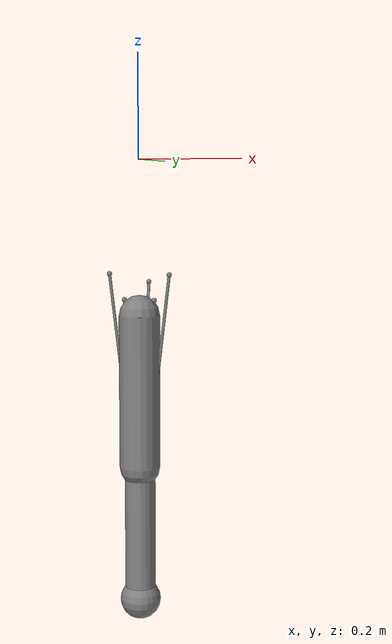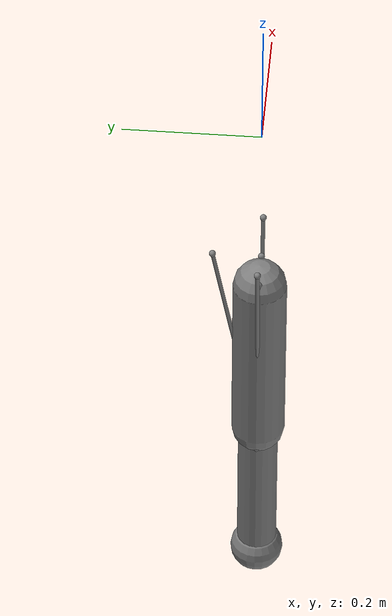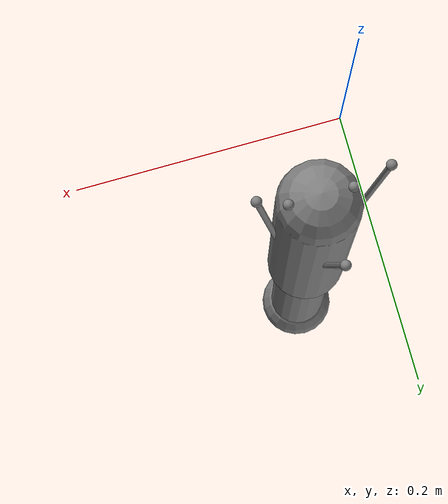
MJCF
<mujoco model="arm_9muscles">
  <compiler angle="radian" autolimits="true"/>
  <option timestep="0.002" iterations="50" solver="Newton"
          integrator="implicit" cone="elliptic"/>

  <default>
    <muscle ctrllimited="true" ctrlrange="0 1"
            force="-1" scale="200" lmin="0.5" lmax="1.6"
            vmax="10" fpmax="1.5" fvmax="1.4"/>
  </default>

  <worldbody>
    <!-- Thorax anchor sites: shoulder muscles need a ground reaction -->
    <site name="bic_l_origin"  pos="0.03  0.00 -0.27"/>
    <site name="tri_l_origin"  pos="-0.03 0.00 -0.27"/>
    <site name="delt_a_anchor" pos="0.06  0.00 -0.22"/>
    <site name="delt_m_anchor" pos="0.00  0.07 -0.24"/>
    <site name="delt_p_anchor" pos="-0.06 0.00 -0.22"/>

    <body name="humerus" pos="0 0 -0.3">
      <joint name="shoulder_flex" type="hinge" axis="0 -1 0" range="-0.5 2.5" damping="0.1"/>
      <joint name="shoulder_abd"  type="hinge" axis="1 0 0"  range="-0.5 2.5" damping="0.1"/>
      <joint name="shoulder_rot"  type="hinge" axis="0 0 1"  range="-0.05 0.05" damping="20" stiffness="200"/>
      <geom type="capsule" fromto="0 0 0 0 0 -0.3" size="0.04" mass="1.98"/>

      <!-- Single-joint muscle origins on the humerus shaft -->
      <site name="bic_s_origin"  pos="0.02   0.00 -0.10"/>
      <site name="bra_origin"    pos="0.015  0.00 -0.15"/>
      <site name="tri_la_origin" pos="-0.02  0.00 -0.08"/>
      <site name="tri_m_origin"  pos="-0.015 0.00 -0.12"/>

      <!-- Via points just above the elbow: keep flexor/extensor paths off the
           joint axis so the moment arm stays physiological at full extension -->
      <site name="bic_l_via"  pos="0.025  0.00 -0.28"/>
      <site name="bic_s_via"  pos="0.025  0.00 -0.28"/>
      <site name="bra_via"    pos="0.02   0.00 -0.28"/>
      <site name="tri_l_via"  pos="-0.025 0.00 -0.28"/>
      <site name="tri_la_via" pos="-0.025 0.00 -0.28"/>
      <site name="tri_m_via"  pos="-0.02  0.00 -0.28"/>

      <!-- Deltoid insertions at the deltoid tuberosity (~mid-humerus) -->
      <site name="delt_a_insertion" pos="0.035  0.00  -0.13"/>
      <site name="delt_m_insertion" pos="0.00   0.035 -0.13"/>
      <site name="delt_p_insertion" pos="-0.035 0.00  -0.13"/>

      <body name="radius" pos="0 0 -0.3">
        <joint name="elbow_flex" type="hinge" axis="0 -1 0" range="0 2.7" damping="0.1"/>
        <geom type="capsule" fromto="0 0 0 0 0 -0.27" size="0.03" mass="1.18"/>

        <!-- Flexor insertions on the anterior forearm, extensors on the
             olecranon side -->
        <site name="bic_l_insertion"  pos="0.02   0.00 -0.05"/>
        <site name="bic_s_insertion"  pos="0.02   0.00 -0.04"/>
        <site name="bra_insertion"    pos="0.015  0.00 -0.05"/>
        <site name="tri_l_insertion"  pos="-0.03  0.00 -0.02"/>
        <site name="tri_la_insertion" pos="-0.025 0.00 -0.015"/>
        <site name="tri_m_insertion"  pos="-0.02  0.00 -0.015"/>

        <body name="hand" pos="0 0 -0.27">
          <geom type="sphere" size="0.04" mass="0.45"/>
          <site name="end_effector" pos="0 0 0"/>
        </body>
      </body>
    </body>
  </worldbody>

  <tendon>
    <spatial name="biceps_long"  width="0.003">
      <site site="bic_l_origin"/>
      <site site="bic_l_via"/>
      <site site="bic_l_insertion"/>
    </spatial>
    <spatial name="biceps_short" width="0.003">
      <site site="bic_s_origin"/>
      <site site="bic_s_via"/>
      <site site="bic_s_insertion"/>
    </spatial>
    <spatial name="brachialis"   width="0.003">
      <site site="bra_origin"/>
      <site site="bra_via"/>
      <site site="bra_insertion"/>
    </spatial>
    <spatial name="triceps_long" width="0.003">
      <site site="tri_l_origin"/>
      <site site="tri_l_via"/>
      <site site="tri_l_insertion"/>
    </spatial>
    <spatial name="triceps_lat"  width="0.003">
      <site site="tri_la_origin"/>
      <site site="tri_la_via"/>
      <site site="tri_la_insertion"/>
    </spatial>
    <spatial name="triceps_med"  width="0.003">
      <site site="tri_m_origin"/>
      <site site="tri_m_via"/>
      <site site="tri_m_insertion"/>
    </spatial>
    <spatial name="deltoid_ant"  width="0.003">
      <site site="delt_a_anchor"/>
      <site site="delt_a_insertion"/>
    </spatial>
    <spatial name="deltoid_med"  width="0.003">
      <site site="delt_m_anchor"/>
      <site site="delt_m_insertion"/>
    </spatial>
    <spatial name="deltoid_post" width="0.003">
      <site site="delt_p_anchor"/>
      <site site="delt_p_insertion"/>
    </spatial>
  </tendon>

  <actuator>
    <muscle name="biceps_long"  tendon="biceps_long"  force="624"  lengthrange="0.1834 0.5086"/>
    <muscle name="biceps_short" tendon="biceps_short" force="435"  lengthrange="0.1350 0.3124"/>
    <muscle name="brachialis"   tendon="brachialis"   force="987"  lengthrange="0.1085 0.2604"/>
    <muscle name="triceps_long" tendon="triceps_long" force="798"  lengthrange="0.2024 0.5087"/>
    <muscle name="triceps_lat"  tendon="triceps_lat"  force="624"  lengthrange="0.1646 0.3394"/>
    <muscle name="triceps_med"  tendon="triceps_med"  force="624"  lengthrange="0.1366 0.2773"/>
    <muscle name="deltoid_ant"  tendon="deltoid_ant"  force="1142" lengthrange="0.0308 0.2989"/>
    <muscle name="deltoid_med"  tendon="deltoid_med"  force="1142" lengthrange="0.0297 0.2811"/>
    <muscle name="deltoid_post" tendon="deltoid_post" force="259"  lengthrange="0.0556 0.3047"/>
  </actuator>

  <sensor>
    <actuatorfrc name="f_bl"  actuator="biceps_long"/>
    <actuatorfrc name="f_bs"  actuator="biceps_short"/>
    <actuatorfrc name="f_bra" actuator="brachialis"/>
    <actuatorfrc name="f_tl"  actuator="triceps_long"/>
    <actuatorfrc name="f_tla" actuator="triceps_lat"/>
    <actuatorfrc name="f_tm"  actuator="triceps_med"/>
    <actuatorfrc name="f_da"  actuator="deltoid_ant"/>
    <actuatorfrc name="f_dm"  actuator="deltoid_med"/>
    <actuatorfrc name="f_dp"  actuator="deltoid_post"/>
    <jointpos name="shf_q" joint="shoulder_flex"/>
    <jointvel name="shf_v" joint="shoulder_flex"/>
  </sensor>
</mujoco>
